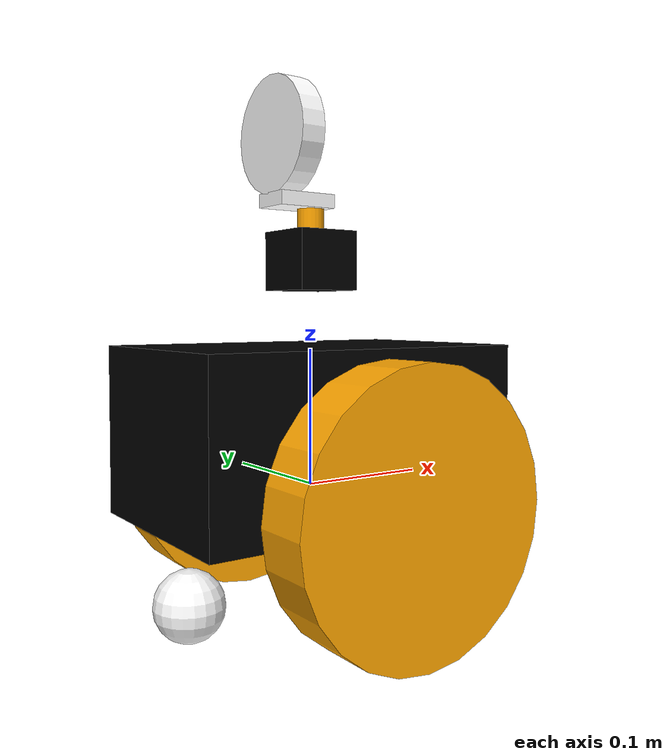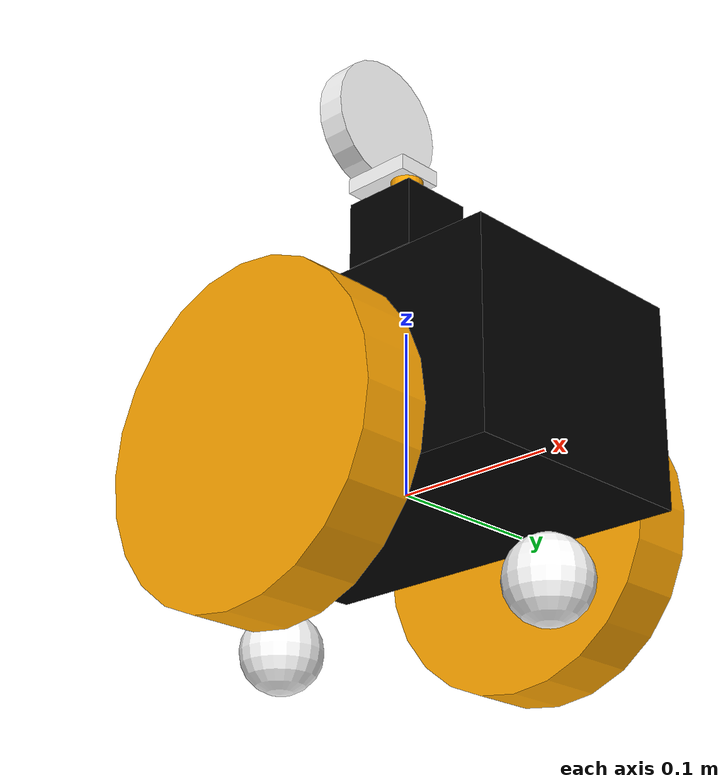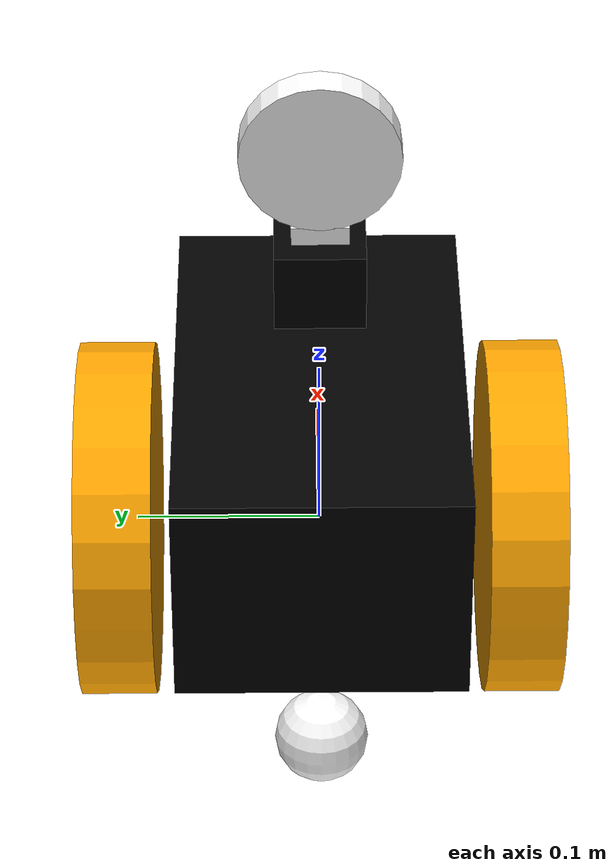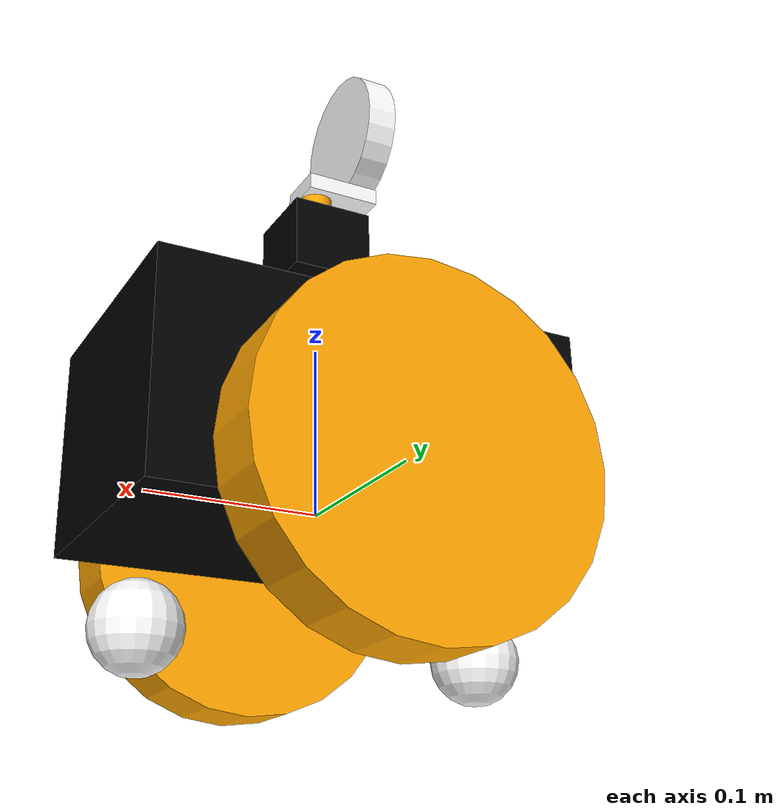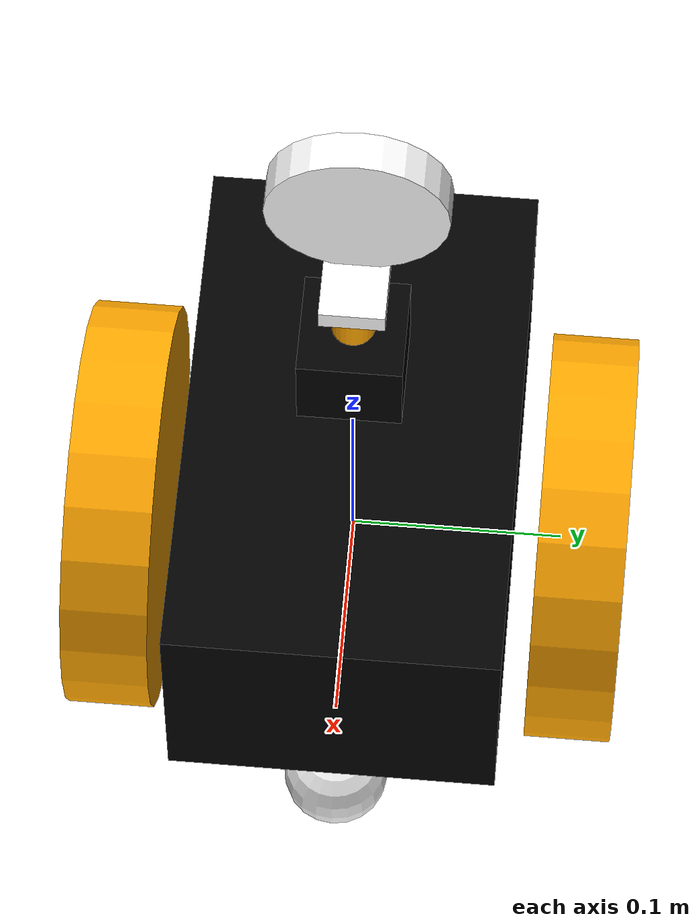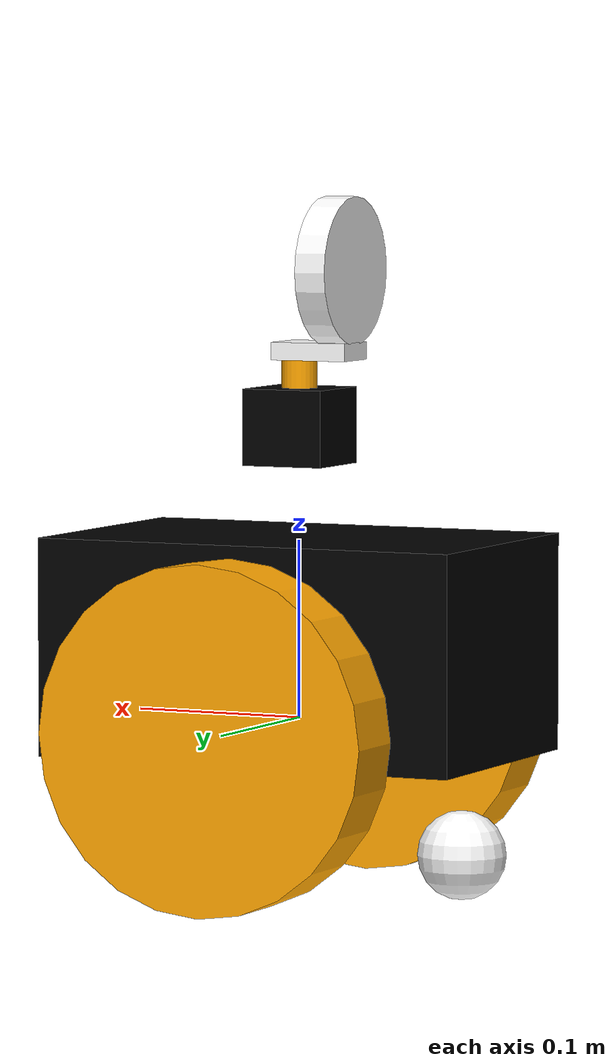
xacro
<?xml version = "1.0"?>
<robot xmlns:xacro = "http://www.ros.org/wiki/xacro">

    <xacro:include filename = "inertia_macros.xacro"/>

    <!-- Materials -->

    <material name = "white">
        <color rgba = "1 1 1 1"/>
    </material>

    <material name = "black">
        <color rgba = "0 0 0 1"/>
    </material>

    <material name = "orange">
        <color rgba = "1 0.65 0 1"/>
    </material>

    <material name = "blue">
        <color rgba = "0 0 1 1"/>
    </material>

    <material name = "red">
        <color rgba = "1 0 0 1"/>
    </material>

    <!-- Base Link -->

    <link name = "base_link">

    </link>

    <!-- Base Footprint Link -->

    <link name="base_footprint">

    </link>

    <!-- Base Footprint Joint -->

    <joint name="base_foorprint_joint" type="fixed">
        <parent link="base_link"/>
        <child link="base_footprint"/>
        <origin xyz="0 0 0" rpy="0 0 0"/>
    </joint>

    <!-- Chassis Link -->

    <link name = "chassis">
        <visual>
            <origin xyz = "0.125 0 0.0415"/>
            <geometry>
                <box size = "0.250 0.155 0.123"/>
            </geometry>
            <material name = "black"/>
        </visual>
        <collision>
            <origin xyz = "0.125 0 0.0415"/>
            <geometry>
                <box size = "0.250 0.155 0.123"/>
            </geometry>
        </collision>
        <xacro:inertial_box mass = "0.5" x = "0.250" y = "0.155" z = "0.123">
            <origin xyz = "0.125 0 0.0415" rpy = "0 0 0"/>
        </xacro:inertial_box>
    </link>

    <gazebo reference = "chassis">
        <material>
            Gazebo/Black
        </material>
    </gazebo>

    <!-- Chassis/Base Joint -->

    <joint name = "chassis_joint" type = "fixed">
        <parent link = "base_link"/>
        <child link = "chassis"/>
        <origin xyz = "-0.125 0 0"/>
    </joint>

    <!-- Stepper Link -->

    <link name="stepper_link">
        <visual>
            <origin xyz="0 0 0.0415"/>
            <geometry>
                <box size="0.048 0.048 0.043"/>
            </geometry>
            <material name="black"/>
        </visual>
        <collision>
            <origin xyz="0 0 0.0415"/>
            <geometry>
                <box size="0.048 0.048 0.043"/>
            </geometry>
        </collision>
        <xacro:inertial_box mass = "0.5" x = "0.048" y = "0.048" z = "0.043">
            <origin xyz = "0 0 0.0415" rpy = "0 0 0"/>
        </xacro:inertial_box>
    </link>

    <gazebo reference="stepper_link">
        <material>
            Gazebo/Black
        </material>
    </gazebo>

    <!-- Stepper Joint -->

    <joint name="stepper_joint" type="fixed">
        <parent link="base_link"/>
        <child link="stepper_link"/>
        <origin xyz="0 0 0.123"/>
    </joint>

    <!-- Shaft Link -->

    <link name="shaft_link">
        <visual>
            <origin xyz="0 0 0.018"/>
            <geometry>
                <cylinder radius="0.01" length="0.036"/>
            </geometry>
            <material name="orange"/>
        </visual>
        <collision>
            <origin xyz="0 0 0.018"/>
            <geometry>
                <cylinder radius="0.01" length="0.036"/>
            </geometry>
        </collision>
        <xacro:inertial_cylinder mass = "0.1" length = "0.036" radius = "0.01">
            <origin xyz = "0 0 0.018" rpy = "0 0 0"/>
        </xacro:inertial_cylinder>
    </link>

    <gazebo reference="shaft_link">
        <material>
            Gazebo/Orange
        </material>
    </gazebo>

    <!-- Shaft Joint -->

    <joint name="shaft_joint" type="fixed">
        <parent link="stepper_link"/>
        <child link="shaft_link"/>
        <origin xyz="0 0 0.043" rpy="0 0 0"/>
    </joint>

    <!-- Bracket Link -->

    <link name="bracket_link">
        <visual>
            <origin xyz="-0.012 0 0.005"/>
            <geometry>
                <box size="0.045 0.03 0.01"/>
            </geometry>
            <material name="white"/>
        </visual>
        <collision>
            <origin xyz="-0.012 0 0.005"/>
            <geometry>
                <box size="0.045 0.03 0.01"/>
            </geometry>
        </collision>
        <xacro:inertial_box mass = "0.1" x = "0.045" y = "0.03" z = "0.01">
            <origin xyz = "0 -0.012 0.005" rpy = "0 0 0"/>
        </xacro:inertial_box>
        <visual>
            <origin xyz="-0.0255 0 0.050" rpy="0 ${pi/2} 0"/>
            <geometry>
                <cylinder radius="0.0415" length="0.018"/>
            </geometry>
            <material name="white"/>
        </visual>
        <collision>
            <origin xyz="-0.0255 0 0.050" rpy="0 ${pi/2} 0"/>
            <geometry>
                <cylinder radius="0.0415" length="0.018"/>
            </geometry>
        </collision>
        <xacro:inertial_cylinder mass = "0.1" length = "0.018" radius = "0.0415">
            <origin xyz = "-0.0255 0 0.050" rpy="0 ${pi/2} 0"/>
        </xacro:inertial_cylinder>
    </link>

    <gazebo reference="bracket_link">
        <material>
            Gazebo/White
        </material>
    </gazebo>

    <!-- Bracket Joint -->

    <joint name="bracket_joint" type="fixed">
        <parent link="shaft_link"/>
        <child link="bracket_link"/>
        <origin xyz="0 0 0.036" rpy="0 0 0"/>
    </joint>

    <!-- Left Wheel Link -->

    <link name = "left_wheel">
        <visual>
            <origin xyz = "0 0 0"/>
            <geometry>
                <cylinder radius = "0.09704" length = "0.041"/>
            </geometry>
            <material name = "orange"/>
        </visual>
        <collision>
            <origin xyz = "0 0 0"/>
            <geometry>
                <sphere radius = "0.09704"/>
            </geometry>
        </collision>
        <xacro:inertial_cylinder mass = "0.1" length = "0.041" radius = "0.09704">
            <origin xyz = "0 0 0" rpy = "0 0 0"/>
        </xacro:inertial_cylinder>
    </link>

    <gazebo reference = "left_wheel">
        <material>
            Gazebo/Orange
        </material>
    </gazebo>

    <!-- Left Wheel Joint -->

    <joint name = "left_wheel_joint" type = "continuous">
        <parent link = "base_link"/>
        <child link = "left_wheel"/>
        <origin xyz = "0 0.110 0" rpy = "-${pi/2} 0 0"/>
        <axis xyz = " 0 0 1"/>
    </joint>

    <!-- Right Wheel Link -->

    <link name = "right_wheel">
        <visual>
            <origin xyz = "0 0 0"/>
            <geometry>
                <cylinder radius = "0.09704" length = "0.041"/>
            </geometry>
            <material name = "orange"/>
        </visual>
        <collision>
            <origin xyz = "0 0 0"/>
            <geometry>
                <sphere radius = "0.09704"/>
            </geometry>
        </collision>
        <xacro:inertial_cylinder mass = "0.1" length = "0.041" radius = "0.09704">
            <origin xyz = "0 0 0" rpy = "0 0 0"/>
        </xacro:inertial_cylinder>
    </link>

    <gazebo reference = "right_wheel">
        <material>
            Gazebo/Orange
        </material>
    </gazebo>

    <!-- Right Wheel Joint -->

    <joint name = "right_wheel_joint" type = "continuous">
        <parent link = "base_link"/>
        <child link = "right_wheel"/>
        <origin xyz = "0 -0.110 0" rpy = "${pi/2} 0 0"/>
        <axis xyz = " 0 0 -1"/>
    </joint>

    <!-- Caster Back Wheel Link -->

    <link name = "caster_back">
        <visual>
            <origin xyz = "0 0 0"/>
            <geometry>
                <sphere radius = "0.025"/>
            </geometry>
            <material name = "white"/>
        </visual>
        <collision>
            <geometry>
                <sphere radius = "0.025"/>
            </geometry>
        </collision>
        <xacro:inertial_sphere mass = "0.1" radius = "0.025">
            <origin xyz = "0 0 0" rpy = "0 0 0"/>
        </xacro:inertial_sphere>
    </link>

    <gazebo reference = "caster_back">
        <material>
            Gazebo/White
        </material>
        <mu1 value = "0.001"/>
        <mu2 value = "0.001"/>
    </gazebo>

    <!-- Caster Back Wheel Joint -->

    <joint name = "caster_back_wheel" type = "fixed">
        <parent link = "chassis"/>
        <child link = "caster_back"/>
        <origin xyz = "0.025 0 -0.07204"/>
    </joint>

    <!-- Caster Front Wheel Link -->

    <link name = "caster_front">
        <visual>
            <origin xyz = "0 0 0"/>
            <geometry>
                <sphere radius = "0.025"/>
            </geometry>
            <material name = "white"/>
        </visual>
        <collision>
            <geometry>
                <sphere radius = "0.025"/>
            </geometry>
        </collision>
        <xacro:inertial_sphere mass = "0.1" radius = "0.025">
            <origin xyz = "0 0 0" rpy = "0 0 0"/>
        </xacro:inertial_sphere>
    </link>

    <gazebo reference = "caster_front">
        <material>
            Gazebo/White
        </material>
        <mu1 value = "0.001"/>
        <mu2 value = "0.001"/>
    </gazebo>

    <!-- Caster Front Wheel Joint -->

    <joint name = "caster_front_wheel" type = "fixed">
        <parent link = "chassis"/>
        <child link = "caster_front"/>
        <origin xyz = "0.225 0 -0.07204"/>
    </joint>

</robot>

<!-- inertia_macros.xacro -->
<robot xmlns:xacro = "http://www.ros.org/wiki/xacro">

    <!-- Specify some standard inertial calculations https://en.wikipedia.org/wiki/List_of_moments_of_inertia -->
    <!-- These make use of xacro's mathematical functionality -->

    <xacro:macro name = "inertial_sphere" params = "mass radius *origin">
        <inertial>
            <xacro:insert_block name = "origin"/>
            <mass value = "${mass}"/>
            <inertia ixx = "${(2/5) * mass * (radius*radius)}" ixy = "0.0" ixz = "0.0"
                    iyy = "${(2/5) * mass * (radius*radius)}" iyz = "0.0"
                    izz = "${(2/5) * mass * (radius*radius)}"/>
        </inertial>
    </xacro:macro>

    <xacro:macro name = "inertial_box" params = "mass x y z *origin">
        <inertial>
            <xacro:insert_block name = "origin"/>
            <mass value = "${mass}"/>
            <inertia ixx = "${(1/12) * mass * (y*y+z*z)}" ixy = "0.0" ixz = "0.0"
                    iyy = "${(1/12) * mass * (x*x+z*z)}" iyz = "0.0"
                    izz = "${(1/12) * mass * (x*x+y*y)}"/>
        </inertial>
    </xacro:macro>

    <xacro:macro name = "inertial_cylinder" params = "mass length radius *origin">
        <inertial>
            <xacro:insert_block name = "origin"/>
            <mass value = "${mass}"/>
            <inertia ixx = "${(1/12) * mass * (3*radius*radius + length*length)}" ixy = "0.0" ixz = "0.0"
                    iyy = "${(1/12) * mass * (3*radius*radius + length*length)}" iyz = "0.0"
                    izz = "${(1/2) * mass * (radius*radius)}"/>
        </inertial>
    </xacro:macro>

</robot>
